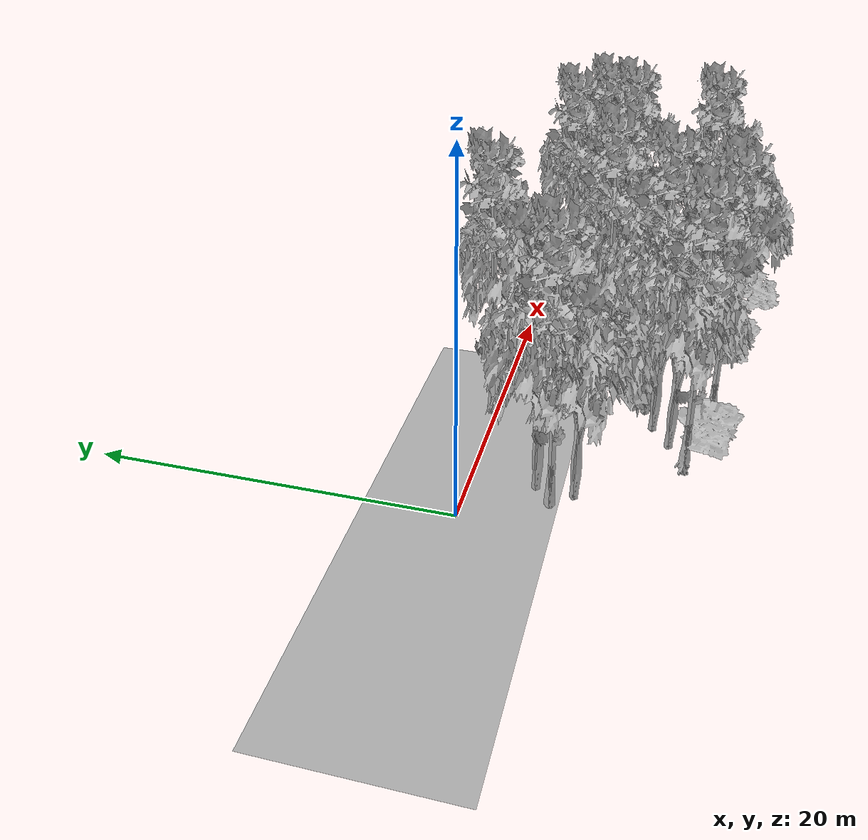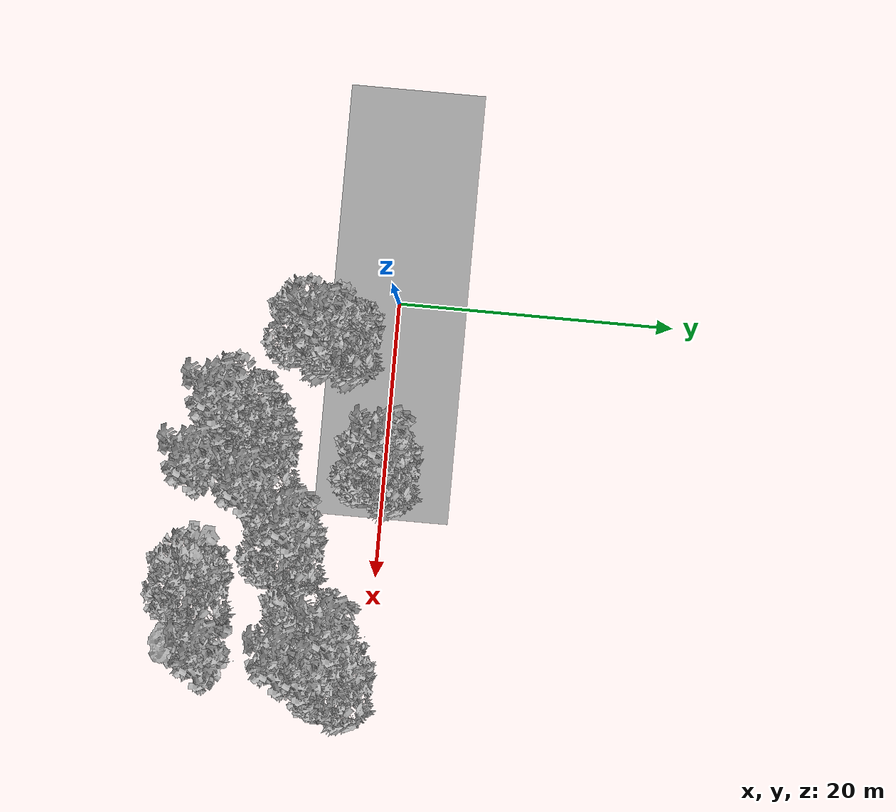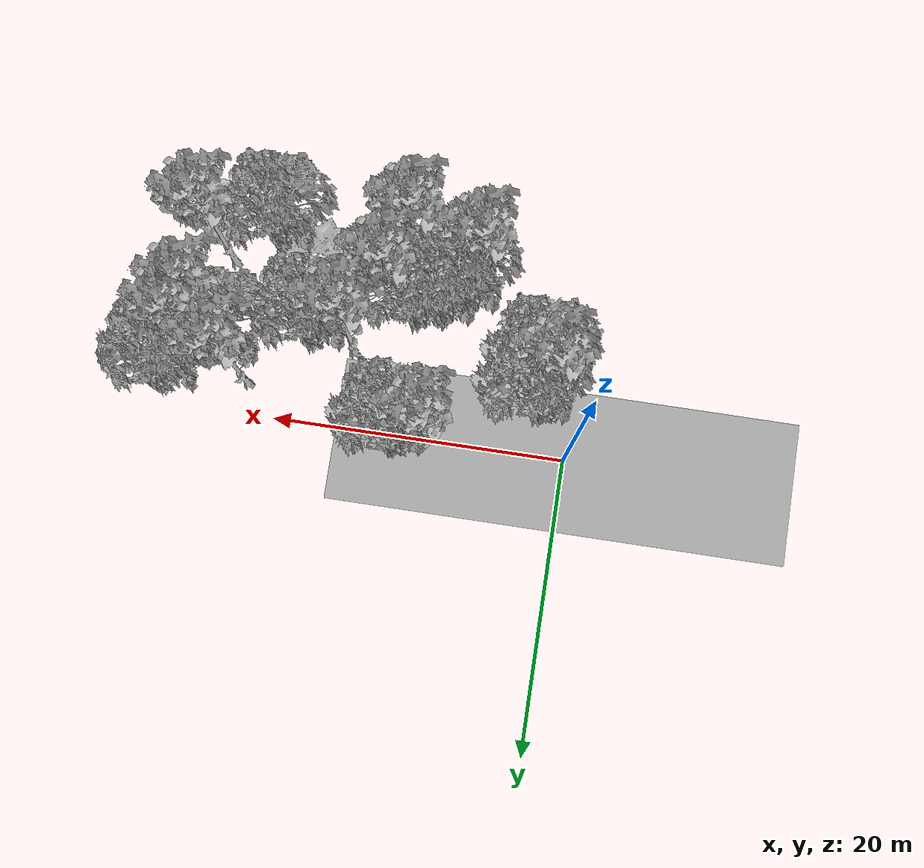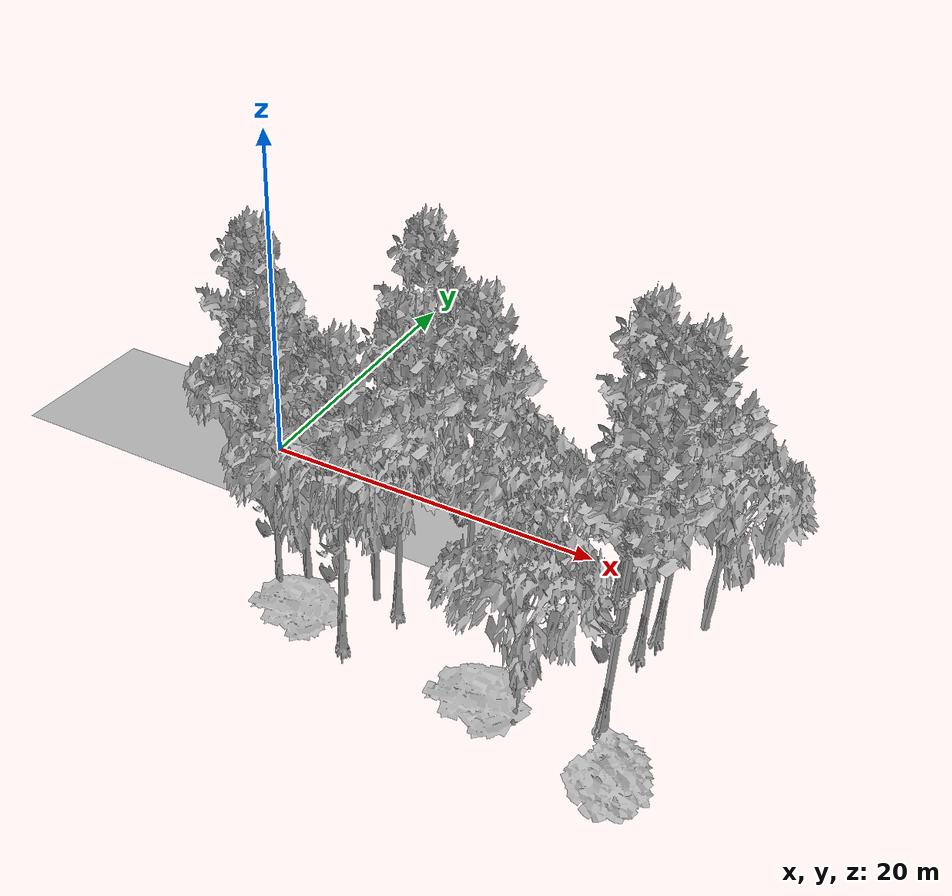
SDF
<sdf version="1.7">
 <world name="default">
  <model name="ground_plane">
   <static>1</static>
   <link name="link">
    <collision name="collision">
     <pose>-50 0 0 0 -0 0</pose>
     <geometry><plane><normal>0 0 1</normal><size>100 100</size></plane></geometry>
     <surface><contact><ode><min_depth>0.01</min_depth><max_vel>0</max_vel></ode></contact></surface>
    </collision>
    <visual name="grass">
     <cast_shadows>0</cast_shadows>
     <geometry>
      <mesh>
       <scale>0.5814285714285714 0.18142857142857144 0.1</scale>
       <uri>file://grass_plane/meshes/grass_plane.dae</uri>
      </mesh>
     </geometry>
    </visual>
   </link>
  </model>
  <model name="Tree 2">
   <static>1</static>
   <pose>24.3925668513738 -5.404501681647249 0 1.57079 -0 0</pose>
   <link name="link">
    <collision name="collision">
     <geometry><mesh><scale>3.5 5 3.5</scale><uri>model://tree_9/meshes/tree_9.obj</uri></mesh></geometry>
    </collision>
    <visual name="visual">
     <geometry><mesh><scale>3.5 5 3.5</scale><uri>model://tree_9/meshes/tree_9.obj</uri></mesh></geometry>
    </visual>
   </link>
  </model>
  <model name="Tree 14">
   <static>1</static>
   <pose>22.139885442716036 -2.181833721462315 0 1.57079 -0 0</pose>
   <link name="link">
    <collision name="collision">
     <geometry><mesh><scale>3.5 5 3.5</scale><uri>model://tree_9/meshes/tree_9.obj</uri></mesh></geometry>
    </collision>
    <visual name="visual">
     <geometry><mesh><scale>3.5 5 3.5</scale><uri>model://tree_9/meshes/tree_9.obj</uri></mesh></geometry>
    </visual>
   </link>
  </model>
  <model name="Tree 21">
   <static>1</static>
   <pose>11.779574644978226 -0.19193173761753535 0 1.57079 -0 0</pose>
   <link name="link">
    <collision name="collision">
     <geometry><mesh><scale>3.5 5 3.5</scale><uri>model://tree_2/meshes/tree_2.obj</uri></mesh></geometry>
    </collision>
    <visual name="visual">
     <geometry><mesh><scale>3.5 5 3.5</scale><uri>model://tree_2/meshes/tree_2.obj</uri></mesh></geometry>
    </visual>
   </link>
  </model>
  <model name="Tree 23">
   <static>1</static>
   <pose>11.844206726922046 -12.102021634161408 0 1.57079 -0 0</pose>
   <link name="link">
    <collision name="collision">
     <geometry><mesh><scale>3.5 5 3.5</scale><uri>model://tree_9/meshes/tree_9.obj</uri></mesh></geometry>
    </collision>
    <visual name="visual">
     <geometry><mesh><scale>3.5 5 3.5</scale><uri>model://tree_9/meshes/tree_9.obj</uri></mesh></geometry>
    </visual>
   </link>
  </model>
  <model name="Tree 30">
   <static>1</static>
   <pose>7.452244665008685 -10.912579816924215 0 1.57079 -0 0</pose>
   <link name="link">
    <collision name="collision">
     <geometry><mesh><scale>3.5 5 3.5</scale><uri>model://tree_9/meshes/tree_9.obj</uri></mesh></geometry>
    </collision>
    <visual name="visual">
     <geometry><mesh><scale>3.5 5 3.5</scale><uri>model://tree_9/meshes/tree_9.obj</uri></mesh></geometry>
    </visual>
   </link>
  </model>
  <model name="Tree 40">
   <static>1</static>
   <pose>25.758005892824144 -13.827363633086165 0 1.57079 -0 0</pose>
   <link name="link">
    <collision name="collision">
     <geometry><mesh><scale>4 2.5 4</scale><uri>model://tree_1/meshes/tree_1.obj</uri></mesh></geometry>
    </collision>
    <visual name="visual">
     <geometry><mesh><scale>4 2.5 4</scale><uri>model://tree_1/meshes/tree_1.obj</uri></mesh></geometry>
    </visual>
   </link>
  </model>
  <model name="Tree 41">
   <static>1</static>
   <pose>13.003556519152127 -8.694305866713469 0 1.57079 -0 0</pose>
   <link name="link">
    <collision name="collision">
     <geometry><mesh><scale>3.5 5 3.5</scale><uri>model://tree_9/meshes/tree_9.obj</uri></mesh></geometry>
    </collision>
    <visual name="visual">
     <geometry><mesh><scale>3.5 5 3.5</scale><uri>model://tree_9/meshes/tree_9.obj</uri></mesh></geometry>
    </visual>
   </link>
  </model>
  <model name="Tree 51">
   <static>1</static>
   <pose>15.284408588775136 -5.432858180794138 0 1.57079 -0 0</pose>
   <link name="link">
    <collision name="collision">
     <geometry><mesh><scale>3.5 5 3.5</scale><uri>model://tree_9/meshes/tree_9.obj</uri></mesh></geometry>
    </collision>
    <visual name="visual">
     <geometry><mesh><scale>3.5 5 3.5</scale><uri>model://tree_9/meshes/tree_9.obj</uri></mesh></geometry>
    </visual>
   </link>
  </model>
  <model name="Tree 66">
   <static>1</static>
   <pose>17.80275548581244 -6.107751313776607 0 1.57079 -0 0</pose>
   <link name="link">
    <collision name="collision">
     <geometry><mesh><scale>3.5 5 3.5</scale><uri>model://tree_2/meshes/tree_2.obj</uri></mesh></geometry>
    </collision>
    <visual name="visual">
     <geometry><mesh><scale>3.5 5 3.5</scale><uri>model://tree_2/meshes/tree_2.obj</uri></mesh></geometry>
    </visual>
   </link>
  </model>
  <model name="Tree 67">
   <static>1</static>
   <pose>19.37189912840725 -13.06635288426725 0 1.57079 -0 0</pose>
   <link name="link">
    <collision name="collision">
     <geometry><mesh><scale>3 2 3</scale><uri>model://tree_3/meshes/tree_3.obj</uri></mesh></geometry>
    </collision>
    <visual name="visual">
     <geometry><mesh><scale>3 2 3</scale><uri>model://tree_3/meshes/tree_3.obj</uri></mesh></geometry>
    </visual>
   </link>
  </model>
  <model name="Tree 90">
   <static>1</static>
   <pose>2.828392078114234 -5.590832025422706 0 1.57079 -0 0</pose>
   <link name="link">
    <collision name="collision">
     <geometry><mesh><scale>3.5 5 3.5</scale><uri>model://tree_2/meshes/tree_2.obj</uri></mesh></geometry>
    </collision>
    <visual name="visual">
     <geometry><mesh><scale>3.5 5 3.5</scale><uri>model://tree_2/meshes/tree_2.obj</uri></mesh></geometry>
    </visual>
   </link>
  </model>
  <model name="Tree 95">
   <static>1</static>
   <pose>26.53814950397816 -2.06112101559129 0 1.57079 -0 0</pose>
   <link name="link">
    <collision name="collision">
     <geometry><mesh><scale>3.5 5 3.5</scale><uri>model://tree_2/meshes/tree_2.obj</uri></mesh></geometry>
    </collision>
    <visual name="visual">
     <geometry><mesh><scale>3.5 5 3.5</scale><uri>model://tree_2/meshes/tree_2.obj</uri></mesh></geometry>
    </visual>
   </link>
  </model>
  <model name="Tree 108">
   <static>1</static>
   <pose>23.05267443756179 -4.374753059209661 0 1.57079 -0 0</pose>
   <link name="link">
    <collision name="collision">
     <geometry><mesh><scale>3.5 5 3.5</scale><uri>model://tree_2/meshes/tree_2.obj</uri></mesh></geometry>
    </collision>
    <visual name="visual">
     <geometry><mesh><scale>3.5 5 3.5</scale><uri>model://tree_2/meshes/tree_2.obj</uri></mesh></geometry>
    </visual>
   </link>
  </model>
  <model name="Tree 113">
   <static>1</static>
   <pose>3.094643081655562 -3.5473583862538067 0 1.57079 -0 0</pose>
   <link name="link">
    <collision name="collision">
     <geometry><mesh><scale>3.5 5 3.5</scale><uri>model://tree_2/meshes/tree_2.obj</uri></mesh></geometry>
    </collision>
    <visual name="visual">
     <geometry><mesh><scale>3.5 5 3.5</scale><uri>model://tree_2/meshes/tree_2.obj</uri></mesh></geometry>
    </visual>
   </link>
  </model>
  <model name="Tree 129">
   <static>1</static>
   <pose>8.490297909341997 -9.981918219102504 0 1.57079 -0 0</pose>
   <link name="link">
    <collision name="collision">
     <geometry><mesh><scale>3.5 5 3.5</scale><uri>model://tree_2/meshes/tree_2.obj</uri></mesh></geometry>
    </collision>
    <visual name="visual">
     <geometry><mesh><scale>3.5 5 3.5</scale><uri>model://tree_2/meshes/tree_2.obj</uri></mesh></geometry>
    </visual>
   </link>
  </model>
  <model name="Tree 137">
   <static>1</static>
   <pose>9.934794774822677 -8.966290090591047 0 1.57079 -0 0</pose>
   <link name="link">
    <collision name="collision">
     <geometry><mesh><scale>3.5 5 3.5</scale><uri>model://tree_2/meshes/tree_2.obj</uri></mesh></geometry>
    </collision>
    <visual name="visual">
     <geometry><mesh><scale>3.5 5 3.5</scale><uri>model://tree_2/meshes/tree_2.obj</uri></mesh></geometry>
    </visual>
   </link>
  </model>
  <model name="Tree 138">
   <static>1</static>
   <pose>24.4657457581596 -10.551532165136987 0 1.57079 -0 0</pose>
   <link name="link">
    <collision name="collision">
     <geometry><mesh><scale>3.5 5 3.5</scale><uri>model://tree_9/meshes/tree_9.obj</uri></mesh></geometry>
    </collision>
    <visual name="visual">
     <geometry><mesh><scale>3.5 5 3.5</scale><uri>model://tree_9/meshes/tree_9.obj</uri></mesh></geometry>
    </visual>
   </link>
  </model>
  <model name="Tree 150">
   <static>1</static>
   <pose>11.50508273236973 -8.399135757015284 0 1.57079 -0 0</pose>
   <link name="link">
    <collision name="collision">
     <geometry><mesh><scale>3.5 5 3.5</scale><uri>model://tree_2/meshes/tree_2.obj</uri></mesh></geometry>
    </collision>
    <visual name="visual">
     <geometry><mesh><scale>3.5 5 3.5</scale><uri>model://tree_2/meshes/tree_2.obj</uri></mesh></geometry>
    </visual>
   </link>
  </model>
  <model name="Tree 152">
   <static>1</static>
   <pose>24.8178987722397 -3.8746345890525333 0 1.57079 -0 0</pose>
   <link name="link">
    <collision name="collision">
     <geometry><mesh><scale>3.5 5 3.5</scale><uri>model://tree_9/meshes/tree_9.obj</uri></mesh></geometry>
    </collision>
    <visual name="visual">
     <geometry><mesh><scale>3.5 5 3.5</scale><uri>model://tree_9/meshes/tree_9.obj</uri></mesh></geometry>
    </visual>
   </link>
  </model>
  <model name="Tree 154">
   <static>1</static>
   <pose>2.0640796758683635 -4.443742446648372 0 1.57079 -0 0</pose>
   <link name="link">
    <collision name="collision">
     <geometry><mesh><scale>3.5 5 3.5</scale><uri>model://tree_9/meshes/tree_9.obj</uri></mesh></geometry>
    </collision>
    <visual name="visual">
     <geometry><mesh><scale>3.5 5 3.5</scale><uri>model://tree_9/meshes/tree_9.obj</uri></mesh></geometry>
    </visual>
   </link>
  </model>
  <model name="Tree 162">
   <static>1</static>
   <pose>20.807261921923356 -12.273765254239898 0 1.57079 -0 0</pose>
   <link name="link">
    <collision name="collision">
     <geometry><mesh><scale>3.5 5 3.5</scale><uri>model://tree_2/meshes/tree_2.obj</uri></mesh></geometry>
    </collision>
    <visual name="visual">
     <geometry><mesh><scale>3.5 5 3.5</scale><uri>model://tree_2/meshes/tree_2.obj</uri></mesh></geometry>
    </visual>
   </link>
  </model>
  <model name="Tree 169">
   <static>1</static>
   <pose>9.202153370990963 -12.204106749266272 0 1.57079 -0 0</pose>
   <link name="link">
    <collision name="collision">
     <geometry><mesh><scale>3 2 3</scale><uri>model://tree_3/meshes/tree_3.obj</uri></mesh></geometry>
    </collision>
    <visual name="visual">
     <geometry><mesh><scale>3 2 3</scale><uri>model://tree_3/meshes/tree_3.obj</uri></mesh></geometry>
    </visual>
   </link>
  </model>
  <model name="Tree 171">
   <static>1</static>
   <pose>9.517728347352005 0.27174108624259574 0 1.57079 -0 0</pose>
   <link name="link">
    <collision name="collision">
     <geometry><mesh><scale>3.5 5 3.5</scale><uri>model://tree_9/meshes/tree_9.obj</uri></mesh></geometry>
    </collision>
    <visual name="visual">
     <geometry><mesh><scale>3.5 5 3.5</scale><uri>model://tree_9/meshes/tree_9.obj</uri></mesh></geometry>
    </visual>
   </link>
  </model>
 </world>
</sdf>
